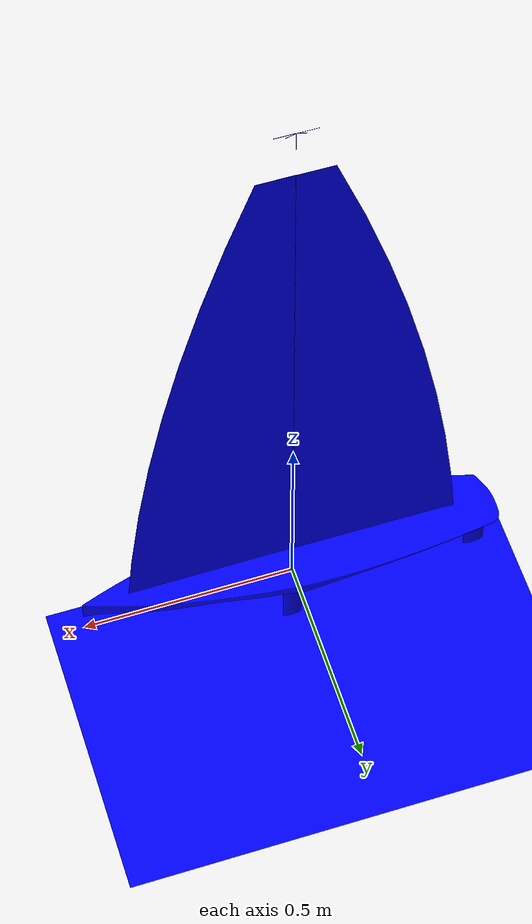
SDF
<?xml version="1.0" ?>
<sdf version="1.9">
  <world name='default'>
    <plugin name='gz::sim::systems::Physics' filename='gz-sim-physics-system'/>
    <plugin name='gz::sim::systems::UserCommands' filename='gz-sim-user-commands-system'/>
    <plugin name='gz::sim::systems::SceneBroadcaster' filename='gz-sim-scene-broadcaster-system'/>
    <plugin name='gz::sim::systems::Contact' filename='gz-sim-contact-system'/>
    <plugin name='gz::sim::systems::Buoyancy' filename='gz-sim-buoyancy-system'>
      <graded_buoyancy>
        <default_density>1000</default_density>
        <density_change>
          <above_depth>0</above_depth>
          <density>1</density>
        </density_change>
      </graded_buoyancy>
      <enable>sailboat::base_link</enable>
      <enable>sailboat::secondary_link</enable>
    </plugin>
    <wind>
      <linear_velocity>0.20000000000000001 0.20000000000000001 -0.0050000000000000001</linear_velocity>
    </wind>
    <plugin name='gz::sim::systems::WindEffects' filename='gz-sim-wind-effects-system'>
      <force_approximation_scaling_factor>1</force_approximation_scaling_factor>
      <horizontal>
        <magnitude>
          <time_for_rise>10</time_for_rise>
          <sin>
            <amplitude_percent>0.05</amplitude_percent>
            <period>60</period>
          </sin>
          <noise type='gaussian'>
            <mean>0</mean>
            <stddev>0.0002</stddev>
          </noise>
        </magnitude>
        <direction>
          <time_for_rise>30</time_for_rise>
          <sin>
            <amplitude>5</amplitude>
            <period>20</period>
          </sin>
          <noise type='gaussian'>
            <mean>0</mean>
            <stddev>0.03</stddev>
          </noise>
        </direction>
      </horizontal>
      <vertical>
        <noise type='gaussian'>
          <mean>0</mean>
          <stddev>0.03</stddev>
        </noise>
      </vertical>
    </plugin>
    <gravity>0 0 -9.8000000000000007</gravity>
    <magnetic_field>5.5644999999999998e-06 2.2875799999999999e-05 -4.2388400000000002e-05</magnetic_field>
    <atmosphere type='adiabatic'/>
    <scene>
      <ambient>0.400000006 0.400000006 0.400000006 1</ambient>
      <background>0.699999988 0.699999988 0.699999988 1</background>
      <shadows>true</shadows>
    </scene>
    <physics type='ode'>
      <max_step_size>0.001</max_step_size>
      <real_time_factor>1</real_time_factor>
      <real_time_update_rate>1000</real_time_update_rate>
    </physics>
    <plugin name='gz::sim::systems::Imu' filename='gz-sim-imu-system'/>
    <model name='sailboat'>
      <link name='base_link'>
        <pose>0 0 0 0 0 1.5708</pose>
        <inertial>
          <mass>2.5</mass>
          <inertia>
            <ixx>0.0058937499999999997</ixx>
            <ixy>0</ixy>
            <ixz>0</ixz>
            <iyy>0.076171875</iyy>
            <iyz>0</iyz>
            <izz>0.079687499999999994</izz>
          </inertia>
          <pose>0 0 0 0 0 0</pose>
        </inertial>
        <collision name='base_link_collision'>
          <geometry>
            <box>
              <size>0.59999999999999998 0.14999999999999999 0.074999999999999997</size>
            </box>
          </geometry>
          <surface>
            <friction>
              <ode/>
            </friction>
            <bounce/>
            <contact/>
          </surface>
        </collision>
        <visual name='base_link_visual'>
          <geometry>
            <mesh>
              <uri>file:///home/camilo/Desktop/meshes/sailboat.dae</uri>
            </mesh>
          </geometry>
          <material>
            <ambient>0 0 1 1</ambient>
            <diffuse>0 0 1 1</diffuse>
            <specular>0 0 1 1</specular>
          </material>
        </visual>
        <enable_wind>false</enable_wind>
      </link>
      <link name='secondary_link'>
        <pose>0.17249999999999996 -8.8754390731933681e-17 0.090000000000000052 8.6440969161523514e-16 1.5707963267948966 0</pose>
        <inertial>
          <mass>0.5</mass>
          <inertia>
            <ixx>0.015800000000000002</ixx>
            <ixy>0</ixy>
            <ixz>0</ixz>
            <iyy>0.0016000000000000001</iyy>
            <iyz>0</iyz>
            <izz>0.015800000000000002</izz>
          </inertia>
          <pose>0 0 0 0 0 0</pose>
        </inertial>
        <collision name='secondary_link_collision'>
          <geometry>
            <cylinder>
              <radius>0.14999999999999999</radius>
              <length>0.59999999999999998</length>
            </cylinder>
          </geometry>
          <surface>
            <friction>
              <ode/>
            </friction>
            <bounce/>
            <contact/>
          </surface>
        </collision>
        <self_collide>false</self_collide>
        <enable_wind>false</enable_wind>
      </link>
      <link name='rudder_fin'>
        <pose>-0.44999999999999996 3.4972025275692425e-16 0 0 0 -7.7715611723760958e-16</pose>
        <inertial>
          <mass>0.20000000000000001</mass>
          <inertia>
            <ixx>9.8750000000000002e-05</ixx>
            <ixy>0</ixy>
            <ixz>0</ixz>
            <iyy>9.8750000000000002e-05</iyy>
            <iyz>0</iyz>
            <izz>1.0000000000000001e-05</izz>
          </inertia>
          <pose>0 0 0 0 0 0</pose>
        </inertial>
        <collision name='rudder_collision'>
          <geometry>
            <box>
              <size>0.10000000000000001 0.10000000000000001 0.074999999999999997</size>
            </box>
          </geometry>
          <surface>
            <friction>
              <ode/>
            </friction>
            <bounce/>
            <contact/>
          </surface>
        </collision>
        <visual name='rudder_visual'>
          <pose>0 0 0.050000000000000003 0 0 1.5707963270000003</pose>
          <geometry>
            <mesh>
              <uri>file:///home/camilo/Desktop/meshes/direccion.dae</uri>
            </mesh>
          </geometry>
          <material>
            <ambient>0 0 1 1</ambient>
            <diffuse>0 0 1 1</diffuse>
            <specular>0 0 1 1</specular>
          </material>
        </visual>
        <enable_wind>false</enable_wind>
      </link>
      <link name='sail_link'>
        <pose>0 0 0 0 0 -7.7715611723760958e-16</pose>
        <inertial>
          <mass>0.5</mass>
          <inertia>
            <ixx>0.010466667000000001</ixx>
            <ixy>0</ixy>
            <ixz>0</ixz>
            <iyy>0.010466667000000001</iyy>
            <iyz>0</iyz>
            <izz>1.0000000000000001e-05</izz>
          </inertia>
          <pose>0 0 0 0 0 0</pose>
        </inertial>
        <collision name='sail_collision'>
          <pose>0 0 0 0 0 1.5707963270000003</pose>
          <geometry>
            <box>
              <size>0.25 0.01 0.5</size>
            </box>
          </geometry>
          <surface>
            <friction>
              <ode/>
            </friction>
            <bounce/>
            <contact/>
          </surface>
        </collision>
        <visual name='sail_visual'>
          <pose>0 0 -0.14999999999999999 0 0 1.5707963270000003</pose>
          <geometry>
            <mesh>
              <uri>file:///home/camilo/Desktop/meshes/vela.dae</uri>
            </mesh>
          </geometry>
          <material>
            <ambient>0 0 1 1</ambient>
            <diffuse>0 0 1 1</diffuse>
            <specular>0 0 1 1</specular>
          </material>
        </visual>
        <enable_wind>true</enable_wind>
      </link>
      <link name='sail2_link'>
        <pose>0 0 0 0 0 -3.1372853071795874</pose>
        <inertial>
          <mass>0.20000000000000001</mass>
          <inertia>
            <ixx>0.010466667000000001</ixx>
            <ixy>0</ixy>
            <ixz>0</ixz>
            <iyy>0.010466667000000001</iyy>
            <iyz>0</iyz>
            <izz>1.0000000000000001e-05</izz>
          </inertia>
          <pose>0 0 0 0 0 0</pose>
        </inertial>
        <collision name='sail2_collision'>
          <geometry>
            <box>
              <size>0.10000000000000001 0.10000000000000001 0.074999999999999997</size>
            </box>
          </geometry>
          <surface>
            <friction>
              <ode/>
            </friction>
            <bounce/>
            <contact/>
          </surface>
        </collision>
        <visual name='sail2_visual'>
          <pose>0 0 -0.14999999999999999 0 0 1.5707963270000003</pose>
          <geometry>
            <mesh>
              <uri>file:///home/camilo/Desktop/meshes/vela.dae</uri>
            </mesh>
          </geometry>
          <material>
            <ambient>0 0 1 1</ambient>
            <diffuse>0 0 1 1</diffuse>
            <specular>0 0 1 1</specular>
          </material>
        </visual>
        <enable_wind>true</enable_wind>
      </link>
      <link name='keel_link'>
        <pose>0 0 0 0 0 -7.7715611723760958e-16</pose>
        <visual name='keel_visual'>
          <pose>0 0 0.050000000000000003 0 0 1.5707963270000003</pose>
          <geometry>
            <mesh>
              <uri>file:///home/camilo/Desktop/meshes/quilla.dae</uri>
            </mesh>
          </geometry>
          <material>
            <ambient>0 0 1 1</ambient>
            <diffuse>0 0 1 1</diffuse>
            <specular>0 0 1 1</specular>
          </material>
        </visual>
        <collision name='keel_collision'>
          <geometry>
            <cylinder>
              <length>0.5</length>
              <radius>0.02</radius>
            </cylinder>
          </geometry>
          <surface>
            <friction>
              <ode/>
            </friction>
            <bounce/>
            <contact/>
          </surface>
        </collision>
        <inertial>
          <pose>0 0 -0.25 0 0 0</pose>
          <mass>0.5</mass>
          <inertia>
            <ixx>0.010466667000000001</ixx>
            <ixy>0</ixy>
            <ixz>0</ixz>
            <iyy>0.010466667000000001</iyy>
            <iyz>0</iyz>
            <izz>0.0001</izz>
          </inertia>
        </inertial>
        <enable_wind>false</enable_wind>
      </link>
      <joint name='rudder_fin_joint' type='revolute'>
        <pose>0 0 0 0 0 0</pose>
        <parent>base_link</parent>
        <child>rudder_fin</child>
        <axis>
          <xyz>0 0 1</xyz>
          <limit>
            <lower>-0.261799</lower>
            <upper>0.261799</upper>
            <effort>inf</effort>
            <velocity>inf</velocity>
            <stiffness>100000000</stiffness>
            <dissipation>1</dissipation>
          </limit>
          <dynamics>
            <spring_reference>0</spring_reference>
            <spring_stiffness>0</spring_stiffness>
            <damping>0</damping>
            <friction>0</friction>
          </dynamics>
        </axis>
      </joint>
      <joint name='mainSail_joint' type='revolute'>
        <pose>0 0 0 0 0 0</pose>
        <parent>base_link</parent>
        <child>sail_link</child>
        <axis>
          <xyz>0 0 1</xyz>
          <limit>
            <lower>-0.261799</lower>
            <upper>0.261799</upper>
            <effort>inf</effort>
            <velocity>inf</velocity>
            <stiffness>100000000</stiffness>
            <dissipation>1</dissipation>
          </limit>
          <dynamics>
            <spring_reference>0</spring_reference>
            <spring_stiffness>0</spring_stiffness>
            <damping>0</damping>
            <friction>0</friction>
          </dynamics>
        </axis>
      </joint>
      <joint name='secondarySail_joint' type='revolute'>
        <pose>0 0 0 0 0 0</pose>
        <parent>base_link</parent>
        <child>sail2_link</child>
        <axis>
          <xyz>0 0 1</xyz>
          <limit>
            <lower>-0.261799</lower>
            <upper>0.261799</upper>
            <effort>inf</effort>
            <velocity>inf</velocity>
            <stiffness>100000000</stiffness>
            <dissipation>1</dissipation>
          </limit>
          <dynamics>
            <spring_reference>0</spring_reference>
            <spring_stiffness>0</spring_stiffness>
            <damping>0</damping>
            <friction>0</friction>
          </dynamics>
        </axis>
      </joint>
      <joint name='keel_joint' type='fixed'>
        <pose>0 0 -0.10000000000000001 0 0 1.5708</pose>
        <parent>base_link</parent>
        <child>keel_link</child>
        <axis>
          <xyz>0 0 1</xyz>
          <limit>
            <lower>-10000000000000000</lower>
            <upper>10000000000000000</upper>
            <effort>inf</effort>
            <velocity>inf</velocity>
            <stiffness>100000000</stiffness>
            <dissipation>1</dissipation>
          </limit>
          <dynamics>
            <spring_reference>0</spring_reference>
            <spring_stiffness>0</spring_stiffness>
            <damping>0</damping>
            <friction>0</friction>
          </dynamics>
        </axis>
        <physics>
          <ode>
            <limit>
              <cfm>0</cfm>
              <erp>0.20000000000000001</erp>
            </limit>
          </ode>
        </physics>
      </joint>
      <joint name='secondary_link_joint' type='fixed'>
        <pose>0.19000000003538034 0 -0.1724999999610303 -1.570796327 3.6732051033688153e-06 1.5707963267948959</pose>
        <parent>base_link</parent>
        <child>secondary_link</child>
        <axis>
          <xyz>0 0 1</xyz>
          <limit>
            <lower>-10000000000000000</lower>
            <upper>10000000000000000</upper>
            <effort>inf</effort>
            <velocity>inf</velocity>
            <stiffness>100000000</stiffness>
            <dissipation>1</dissipation>
          </limit>
          <dynamics>
            <spring_reference>0</spring_reference>
            <spring_stiffness>0</spring_stiffness>
            <damping>0</damping>
            <friction>0</friction>
          </dynamics>
        </axis>
        <physics>
          <ode>
            <limit>
              <cfm>0</cfm>
              <erp>0.20000000000000001</erp>
            </limit>
          </ode>
        </physics>
      </joint>
      <plugin name='gz::sim::systems::JointPositionController' filename='gz-sim-joint-position-controller-system'>
        <joint_name>rudder_fin_joint</joint_name>
        <p_gain>0.1</p_gain>
      </plugin>
      <plugin name='gz::sim::systems::JointPositionController' filename='gz-sim-joint-position-controller-system'>
        <joint_name>mainSail_joint</joint_name>
        <p_gain>0.1</p_gain>
      </plugin>
      <plugin name='gz::sim::systems::JointPositionController' filename='gz-sim-joint-position-controller-system'>
        <joint_name>secondarySail_joint</joint_name>
        <p_gain>0.1</p_gain>
      </plugin>
      <plugin name='gz::sim::systems::PosePublisher' filename='libgz-sim-pose-publisher-system.so'>
        <publish_link_pose>true</publish_link_pose>
        <publish_sensor_pose>true</publish_sensor_pose>
        <publish_collision_pose>false</publish_collision_pose>
        <publish_visual_pose>false</publish_visual_pose>
        <publish_nested_model_pose>true</publish_nested_model_pose>
        <publish_model_pose>false</publish_model_pose>
        <use_pose_vector_msg>true</use_pose_vector_msg>
        <static_publisher>true</static_publisher>
        <static_update_frequency>1</static_update_frequency>
      </plugin>
      <plugin name='gz::sim::systems::LiftDrag' filename='gz-sim-lift-drag-system'>
        <air_density>1000</air_density>
        <cla>4.13</cla>
        <cla_stall>-1.1</cla_stall>
        <cda>0.2</cda>
        <cda_stall>0.03</cda_stall>
        <alpha_stall>0.17</alpha_stall>
        <a0>0</a0>
        <area>0.0244</area>
        <upward>0 1 0</upward>
        <forward>1 0 0</forward>
        <link_name>rudder_fin</link_name>
        <cp>0 0 0</cp>
      </plugin>
      <plugin name='gz::sim::systems::LiftDrag' filename='gz-sim-lift-drag-system'>
        <air_density>1000</air_density>
        <cla>4.13</cla>
        <cla_stall>-1.1</cla_stall>
        <cda>0.2</cda>
        <cda_stall>0.03</cda_stall>
        <alpha_stall>0.17</alpha_stall>
        <a0>0</a0>
        <area>0.0244</area>
        <upward>0 1 0</upward>
        <forward>1 0 0</forward>
        <link_name>keel_link</link_name>
        <cp>0 0 0</cp>
      </plugin>
      <pose>0 0 0 0 0 7.7715611723760958e-16</pose>
      <static>false</static>
      <self_collide>false</self_collide>
    </model>
    <model name='water_plane'>
      <static>true</static>
      <link name='link'>
        <visual name='water_plane'>
          <geometry>
            <plane>
              <size>100 100</size>
              <normal>0 0 1</normal>
            </plane>
          </geometry>
          <material>
            <ambient>0 0 1 0.5</ambient>
            <diffuse>0 0 1 0.5</diffuse>
            <specular>0 0 1 0.5</specular>
          </material>
        </visual>
        <pose>0 0 -0.10000000000000001 0 0 0</pose>
        <inertial>
          <pose>0 0 -0.10000000000000001 0 0 0</pose>
          <mass>1</mass>
          <inertia>
            <ixx>1</ixx>
            <ixy>0</ixy>
            <ixz>0</ixz>
            <iyy>1</iyy>
            <iyz>0</iyz>
            <izz>1</izz>
          </inertia>
        </inertial>
        <enable_wind>false</enable_wind>
      </link>
      <pose>0 0 -0.10000000000000001 0 0 0</pose>
      <self_collide>false</self_collide>
    </model>
    <light name='sun' type='directional'>
      <pose>0 0 10 0 0 0</pose>
      <cast_shadows>true</cast_shadows>
      <intensity>1</intensity>
      <direction>-0.5 0.10000000000000001 -0.90000000000000002</direction>
      <diffuse>0.800000012 0.800000012 0.800000012 1</diffuse>
      <specular>0.200000003 0.200000003 0.200000003 1</specular>
      <attenuation>
        <range>1000</range>
        <linear>0.01</linear>
        <constant>0.90000000000000002</constant>
        <quadratic>0.001</quadratic>
      </attenuation>
      <spot>
        <inner_angle>0</inner_angle>
        <outer_angle>0</outer_angle>
        <falloff>0</falloff>
      </spot>
    </light>
  </world>
</sdf>
